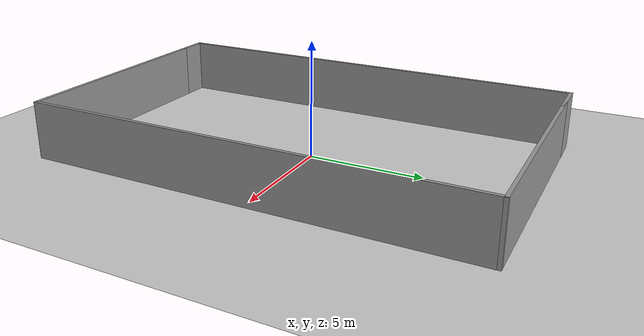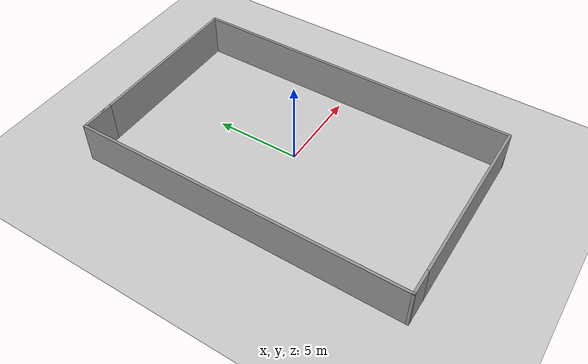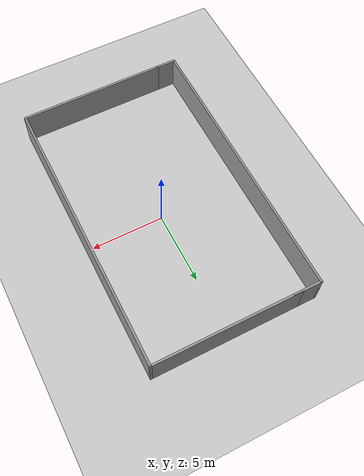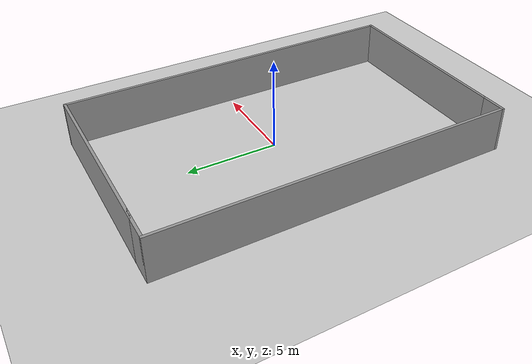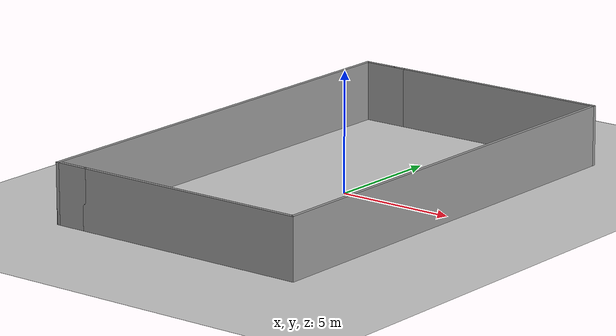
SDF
<sdf version="1.7">
 <world name="default">
  <plugin name="gazebo_ros_state" filename="libgazebo_ros_state.so">
   <ros><namespace>/test</namespace><argument>model_states:=model_states_demo</argument></ros>
   <update_rate>1.0</update_rate>
  </plugin>
  <light name="sun" type="directional">
   <pose>0 0 10 0 -0 0</pose>
   <diffuse>0.8 0.8 0.8 1</diffuse>
   <specular>0.2 0.2 0.2 1</specular>
   <attenuation>
    <range>1000</range>
    <constant>0.9</constant>
    <linear>0.01</linear>
    <quadratic>0.001</quadratic>
   </attenuation>
   <direction>-0.5 0.1 -0.9</direction>
   <spot><inner_angle>0</inner_angle><outer_angle>0</outer_angle><falloff>0</falloff></spot>
  </light>
  <model name="ground_plane">
   <static>1</static>
   <link name="link">
    <collision name="collision">
     <geometry><plane><normal>0 0 1</normal><size>100 100</size></plane></geometry>
     <surface>
      <contact><collide_bitmask>65535</collide_bitmask></contact>
      <friction><ode><mu>100</mu><mu2>50</mu2></ode></friction>
     </surface>
    </collision>
    <visual name="visual">
     <cast_shadows>0</cast_shadows>
     <geometry><plane><normal>0 0 1</normal><size>100 100</size></plane></geometry>
     <material>
      <script><uri>file://media/materials/scripts/gazebo.material</uri><name>Gazebo/Grey</name></script>
     </material>
    </visual>
   </link>
  </model>
  <gravity>0 0 -9.8</gravity>
  <magnetic_field>6e-06 2.3e-05 -4.2e-05</magnetic_field>
  <atmosphere type="adiabatic"/>
  <physics type="ode">
   <max_step_size>0.001</max_step_size>
   <real_time_factor>1</real_time_factor>
   <real_time_update_rate>1000</real_time_update_rate>
  </physics>
  <scene><ambient>0.4 0.4 0.4 1</ambient><background>0.7 0.7 0.7 1</background><shadows>0</shadows></scene>
  <spherical_coordinates>
   <surface_model>EARTH_WGS84</surface_model>
   <latitude_deg>0</latitude_deg>
   <longitude_deg>0</longitude_deg>
   <elevation>0</elevation>
   <heading_deg>0</heading_deg>
  </spherical_coordinates>
  <model name="corridor">
   <pose>-0.316423 -0.319066 0 0 -0 0</pose>
   <link name="Wall_13">
    <collision name="Wall_13_Collision">
     <geometry><box><size>10.25 0.15 2.5</size></box></geometry>
     <pose>0 0 1.25 0 -0 0</pose>
    </collision>
    <visual name="Wall_13_Visual">
     <pose>0 0 1.25 0 -0 0</pose>
     <geometry><box><size>10.25 0.15 2.5</size></box></geometry>
     <material>
      <script><uri>file://media/materials/scripts/gazebo.material</uri><name>Gazebo/Grey</name></script>
      <ambient>1 1 1 1</ambient>
     </material>
     <meta><layer>0</layer></meta>
    </visual>
    <pose>0.675 -9.675 0 0 -0 0</pose>
   </link>
   <link name="Wall_14">
    <collision name="Wall_14_Collision">
     <geometry><box><size>19.5 0.15 2.5</size></box></geometry>
     <pose>0 0 1.25 0 -0 0</pose>
    </collision>
    <visual name="Wall_14_Visual">
     <pose>0 0 1.25 0 -0 0</pose>
     <geometry><box><size>19.5 0.15 2.5</size></box></geometry>
     <material>
      <script><uri>file://media/materials/scripts/gazebo.material</uri><name>Gazebo/Grey</name></script>
      <ambient>1 1 1 1</ambient>
     </material>
     <meta><layer>0</layer></meta>
    </visual>
    <pose>5.725 -0 0 0 -0 1.5708</pose>
   </link>
   <link name="Wall_15">
    <collision name="Wall_15_Collision">
     <geometry><box><size>10.25 0.15 2.5</size></box></geometry>
     <pose>0 0 1.25 0 -0 0</pose>
    </collision>
    <visual name="Wall_15_Visual">
     <pose>0 0 1.25 0 -0 0</pose>
     <geometry><box><size>10.25 0.15 2.5</size></box></geometry>
     <material>
      <script><uri>file://media/materials/scripts/gazebo.material</uri><name>Gazebo/Grey</name></script>
      <ambient>1 1 1 1</ambient>
     </material>
     <meta><layer>0</layer></meta>
    </visual>
    <pose>0.675 9.675 0 0 -0 3.14159</pose>
   </link>
   <link name="Wall_22">
    <collision name="Wall_22_Collision">
     <geometry><box><size>1.5 0.15 2.5</size></box></geometry>
     <pose>0 0 1.25 0 -0 0</pose>
    </collision>
    <visual name="Wall_22_Visual">
     <pose>0 0 1.25 0 -0 0</pose>
     <geometry><box><size>1.5 0.15 2.5</size></box></geometry>
     <material>
      <script><uri>file://media/materials/scripts/gazebo.material</uri><name>Gazebo/Grey</name></script>
      <ambient>1 1 1 1</ambient>
     </material>
     <meta><layer>0</layer></meta>
    </visual>
    <pose>-5.05 -9.675 0 0 -0 3.14159</pose>
   </link>
   <link name="Wall_23">
    <collision name="Wall_23_Collision">
     <geometry><box><size>19.5 0.15 2.5</size></box></geometry>
     <pose>0 0 1.25 0 -0 0</pose>
    </collision>
    <visual name="Wall_23_Visual">
     <pose>0 0 1.25 0 -0 0</pose>
     <geometry><box><size>19.5 0.15 2.5</size></box></geometry>
     <material>
      <script><uri>file://media/materials/scripts/gazebo.material</uri><name>Gazebo/Grey</name></script>
      <ambient>1 1 1 1</ambient>
     </material>
     <meta><layer>0</layer></meta>
    </visual>
    <pose>-5.725 -0 0 0 -0 1.5708</pose>
   </link>
   <link name="Wall_24">
    <collision name="Wall_24_Collision">
     <geometry><box><size>2 0.15 2.5</size></box></geometry>
     <pose>0 0 1.25 0 -0 0</pose>
    </collision>
    <visual name="Wall_24_Visual">
     <pose>0 0 1.25 0 -0 0</pose>
     <geometry><box><size>2 0.15 2.5</size></box></geometry>
     <material>
      <script><uri>file://media/materials/scripts/gazebo.material</uri><name>Gazebo/Grey</name></script>
      <ambient>1 1 1 1</ambient>
     </material>
     <meta><layer>0</layer></meta>
    </visual>
    <pose>-4.8 9.675 0 0 -0 0</pose>
   </link>
   <static>1</static>
  </model>
 </world>
</sdf>
